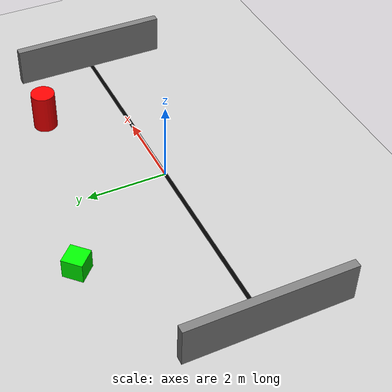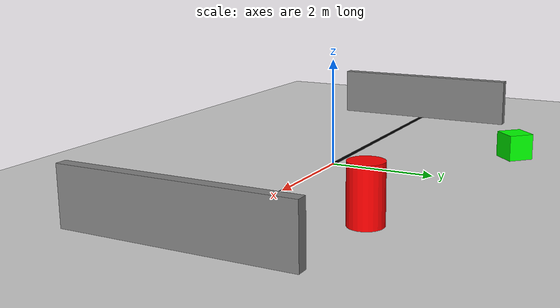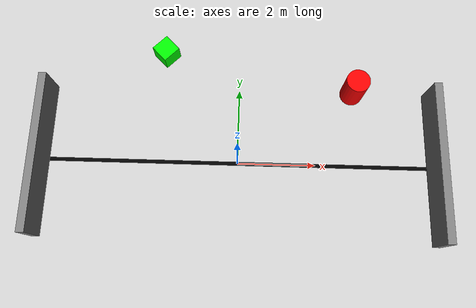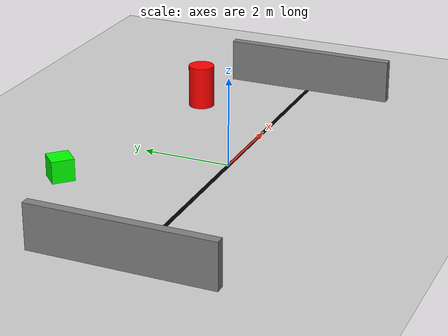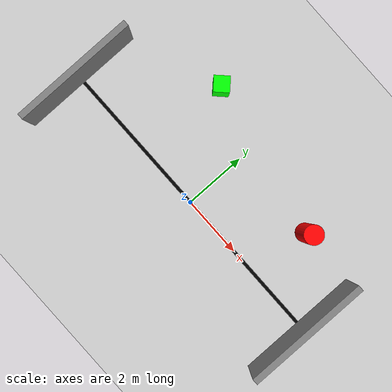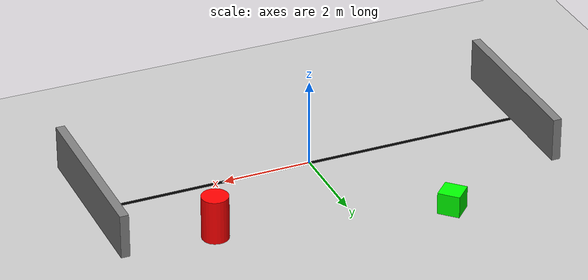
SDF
<?xml version="1.0" ?>
<sdf version="1.6">
  <world name="sensor_test_world">
    <!-- Physics -->
    <physics name="1ms" type="ignored">
      <max_step_size>0.001</max_step_size>
      <real_time_factor>1.0</real_time_factor>
    </physics>

    <!-- Plugin para physics -->
    <plugin
      filename="gz-sim-physics-system"
      name="gz::sim::systems::Physics">
    </plugin>

    <!-- Plugin para user commands -->
    <plugin
      filename="gz-sim-user-commands-system"
      name="gz::sim::systems::UserCommands">
    </plugin>

    <!-- Plugin para scene broadcaster -->
    <plugin
      filename="gz-sim-scene-broadcaster-system"
      name="gz::sim::systems::SceneBroadcaster">
    </plugin>

    <!-- Iluminación -->
    <light type="directional" name="sun">
      <cast_shadows>true</cast_shadows>
      <pose>0 0 10 0 0 0</pose>
      <diffuse>0.8 0.8 0.8 1</diffuse>
      <specular>0.2 0.2 0.2 1</specular>
      <attenuation>
        <range>1000</range>
        <constant>0.9</constant>
        <linear>0.01</linear>
        <quadratic>0.001</quadratic>
      </attenuation>
      <direction>-0.5 0.1 -0.9</direction>
    </light>

    <!-- Suelo -->
    <model name="ground_plane">
      <static>true</static>
      <link name="link">
        <collision name="collision">
          <geometry>
            <plane>
              <normal>0 0 1</normal>
              <size>100 100</size>
            </plane>
          </geometry>
        </collision>
        <visual name="visual">
          <geometry>
            <plane>
              <normal>0 0 1</normal>
              <size>100 100</size>
            </plane>
          </geometry>
          <material>
            <ambient>0.8 0.8 0.8 1</ambient>
            <diffuse>0.8 0.8 0.8 1</diffuse>
            <specular>0.8 0.8 0.8 1</specular>
          </material>
        </visual>
      </link>
    </model>

    <!-- Línea negra para seguimiento -->
    <model name="black_line">
      <static>true</static>
      <pose>0 0 0.001 0 0 0</pose>
      <link name="line_link">
        <visual name="line_visual">
          <geometry>
            <box>
              <size>10 0.1 0.001</size>
            </box>
          </geometry>
          <material>
            <ambient>0 0 0 1</ambient>
            <diffuse>0 0 0 1</diffuse>
            <specular>0 0 0 1</specular>
          </material>
        </visual>
      </link>
    </model>

    <!-- Obstáculo cilíndrico -->
    <model name="cylinder_obstacle">
      <static>true</static>
      <pose>3 2 0.5 0 0 0</pose>
      <link name="cylinder_link">
        <collision name="cylinder_collision">
          <geometry>
            <cylinder>
              <radius>0.3</radius>
              <length>1.0</length>
            </cylinder>
          </geometry>
        </collision>
        <visual name="cylinder_visual">
          <geometry>
            <cylinder>
              <radius>0.3</radius>
              <length>1.0</length>
            </cylinder>
          </geometry>
          <material>
            <ambient>1 0 0 1</ambient>
            <diffuse>1 0 0 1</diffuse>
            <specular>0.1 0.1 0.1 1</specular>
          </material>
        </visual>
      </link>
    </model>

    <!-- Obstáculo de caja -->
    <model name="box_obstacle">
      <static>true</static>
      <pose>-2 3 0.25 0 0 0.785</pose>
      <link name="box_link">
        <collision name="box_collision">
          <geometry>
            <box>
              <size>0.5 0.5 0.5</size>
            </box>
          </geometry>
        </collision>
        <visual name="box_visual">
          <geometry>
            <box>
              <size>0.5 0.5 0.5</size>
            </box>
          </geometry>
          <material>
            <ambient>0 1 0 1</ambient>
            <diffuse>0 1 0 1</diffuse>
            <specular>0.1 0.1 0.1 1</specular>
          </material>
        </visual>
      </link>
    </model>

    <!-- Paredes para crear un laberinto simple -->
    <model name="wall_1">
      <static>true</static>
      <pose>5 0 0.5 0 0 0</pose>
      <link name="wall_link">
        <collision name="wall_collision">
          <geometry>
            <box>
              <size>0.2 4 1</size>
            </box>
          </geometry>
        </collision>
        <visual name="wall_visual">
          <geometry>
            <box>
              <size>0.2 4 1</size>
            </box>
          </geometry>
          <material>
            <ambient>0.5 0.5 0.5 1</ambient>
            <diffuse>0.5 0.5 0.5 1</diffuse>
            <specular>0.1 0.1 0.1 1</specular>
          </material>
        </visual>
      </link>
    </model>

    <model name="wall_2">
      <static>true</static>
      <pose>-5 0 0.5 0 0 0</pose>
      <link name="wall_link">
        <collision name="wall_collision">
          <geometry>
            <box>
              <size>0.2 4 1</size>
            </box>
          </geometry>
        </collision>
        <visual name="wall_visual">
          <geometry>
            <box>
              <size>0.2 4 1</size>
            </box>
          </geometry>
          <material>
            <ambient>0.5 0.5 0.5 1</ambient>
            <diffuse>0.5 0.5 0.5 1</diffuse>
            <specular>0.1 0.1 0.1 1</specular>
          </material>
        </visual>
      </link>
    </model>

  </world>
</sdf>
